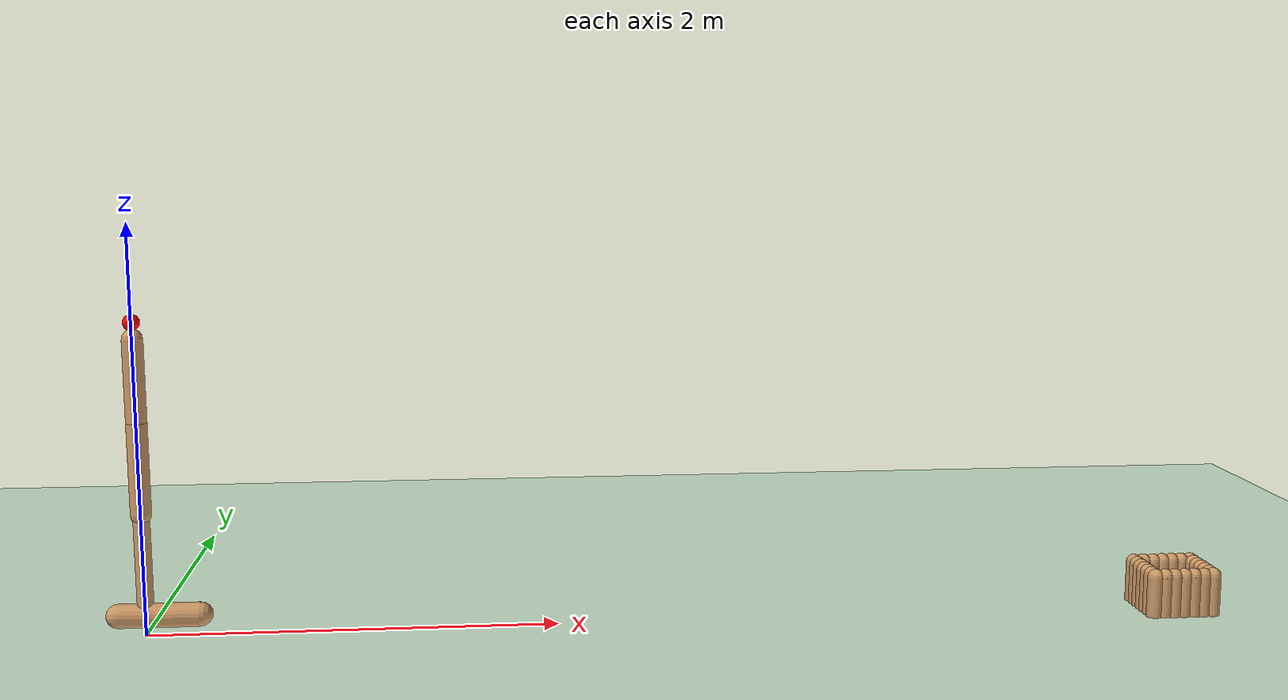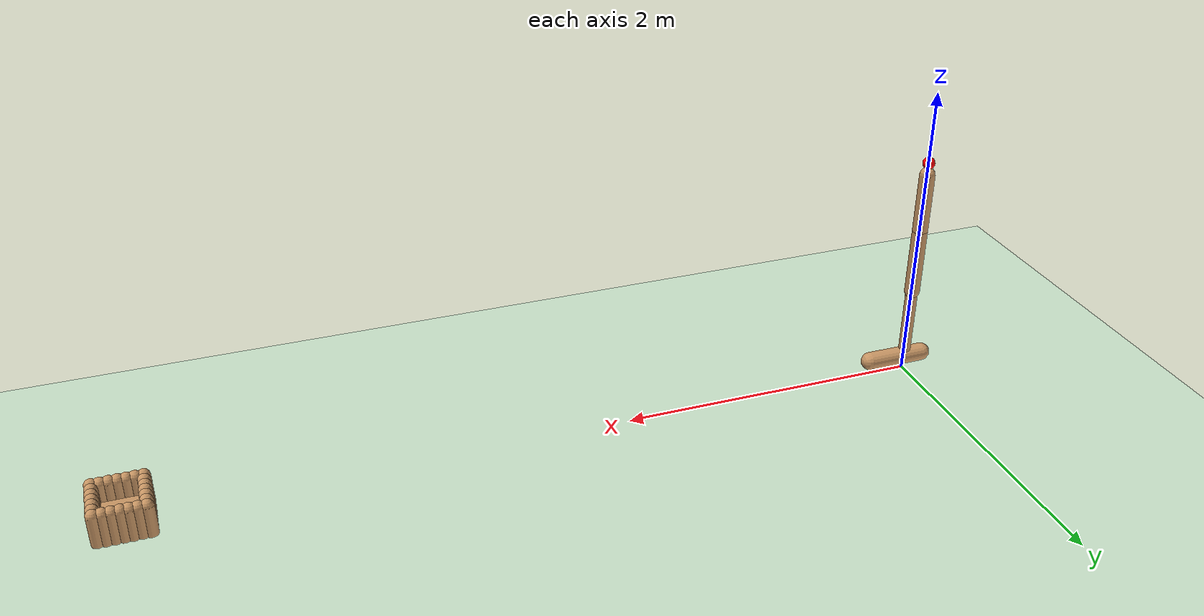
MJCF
<mujoco model="hopper">
  <compiler angle="radian" autolimits="true"/>
  <option integrator="RK4"/>
  <visual>
    <map znear="0.02"/>
  </visual>
  <default class="main">
    <joint limited="true" armature="1" damping="1"/>
    <geom condim="1" solimp="0.8 0.8 0.01 0.5 2" margin="0.001" material="geom" rgba="0.8 0.6 0.4 1"/>
    <general ctrllimited="true" ctrlrange="-0.4 0.4"/>
  </default>
  <asset>
    <texture type="skybox" builtin="gradient" rgb1="0.4 0.5 0.6" rgb2="0 0 0" width="100" height="600"/>
    <texture type="cube" name="texgeom" builtin="flat" mark="cross" rgb1="0.8 0.6 0.4" rgb2="0.8 0.6 0.4" markrgb="1 1 1" width="127" height="762"/>
    <texture type="2d" name="texplane" builtin="checker" rgb1="0 0 0" rgb2="0.8 0.8 0.8" width="100" height="100"/>
    <material name="MatPlane" texture="texplane" texrepeat="60 60" specular="1" shininess="1" reflectance="0.5"/>
    <material name="geom" texture="texgeom" texuniform="true"/>
  </asset>
  <worldbody>
    <geom name="floor" size="20 20 0.125" type="plane" condim="3" material="MatPlane" rgba="0.8 0.9 0.8 1"/>
    <light pos="0 0 1.3" dir="0 0 -1" directional="true" cutoff="100" exponent="1" diffuse="1 1 1" specular="0.1 0.1 0.1"/>
    <body name="torso" pos="0 0 1.25" gravcomp="0">
      <joint name="rootx" pos="0 0 -1.25" axis="1 0 0" limited="false" type="slide" armature="0" damping="0"/>
      <joint name="rootz" pos="0 0 -1.25" axis="0 0 1" limited="false" type="slide" ref="1.25" armature="0" damping="0"/>
      <joint name="rooty" pos="0 0 0" axis="0 1 0" limited="false" armature="0" damping="0"/>
      <geom name="torso_geom" size="0.05 0.2" type="capsule" friction="0.9 0.005 0.0001"/>
      <camera name="track" pos="0 -3 -0.25" quat="0.707107 0.707107 0 0" mode="trackcom"/>
      <body name="thigh" pos="0 0 -0.2" gravcomp="0">
        <joint name="thigh_joint" pos="0 0 0" axis="0 -1 0" range="-2.61799 0"/>
        <geom name="thigh_geom" size="0.05 0.225" pos="0 0 -0.225" type="capsule" friction="0.9 0.005 0.0001"/>
        <body name="leg" pos="0 0 -0.7" gravcomp="0">
          <joint name="leg_joint" pos="0 0 0.25" axis="0 -1 0" range="-2.61799 0"/>
          <geom name="leg_geom" size="0.04 0.25" type="capsule" friction="0.9 0.005 0.0001"/>
          <body name="foot" pos="0.065 0 -0.25" gravcomp="0">
            <joint name="foot_joint" pos="-0.065 0 0" axis="0 -1 0" range="-0.785398 0.785398"/>
            <geom name="foot_geom" size="0.06 0.195" quat="0.707107 0 -0.707107 0" type="capsule" friction="2 0.005 0.0001"/>
          </body>
        </body>
      </body>
    </body>
    <body name="ball" pos="0 0 1.53" gravcomp="0">
      <joint name="tar:x" pos="0 0 0" axis="1 0 0" limited="false" type="slide" armature="0" damping="0"/>
      <joint name="tar:y" pos="0 0 0" axis="0 1 0" limited="false" type="slide" armature="0" damping="0"/>
      <joint name="tar:z" pos="0 0 0" axis="0 0 1" limited="false" type="slide" armature="0" damping="0"/>
      <geom name="ball_geom" size="0.025" condim="4" priority="1" friction="0.1 0.1 0.1" solref="-10000 -10" solimp="0.9 0.95 0.001 0.5 2" mass="0.1" rgba="0.8 0.2 0.1 1"/>
      <site name="target_ball" pos="0 0 0" size="0.04" rgba="1 0 0 1"/>
    </body>
    <body name="basket_ground" pos="5 0 0" gravcomp="0">
      <geom name="basket_ground_geom" size="0.1 0.1 0.15" pos="0.15 0 0" quat="0.707107 0 -0.707107 0" type="box" friction="0.9 0.005 0.0001"/>
      <body name="edge1" pos="0 0 0" gravcomp="0">
        <geom name="edge1_geom" size="0.04 0.1" pos="0 0 0.1" quat="0 1 0 0" type="capsule" friction="2 0.005 0.0001"/>
      </body>
      <body name="edge2" pos="0 0 0.05" gravcomp="0">
        <geom name="edge2_geom" size="0.04 0.1" pos="0 0.05 0.05" quat="0 1 0 0" type="capsule" friction="2 0.005 0.0001"/>
      </body>
      <body name="edge3" pos="0 0 0.1" gravcomp="0">
        <geom name="edge3_geom" size="0.04 0.1" pos="0 0.1 0" quat="0 1 0 0" type="capsule" friction="2 0.005 0.0001"/>
      </body>
      <body name="edge4" pos="0 0 0.15" gravcomp="0">
        <geom name="edge4_geom" size="0.04 0.1" pos="0 0.15 -0.05" quat="0 1 0 0" type="capsule" friction="2 0.005 0.0001"/>
      </body>
      <body name="edge5" pos="0.05 0 0.15" gravcomp="0">
        <geom name="edge5_geom" size="0.04 0.1" pos="0 0.15 -0.05" quat="0 1 0 0" type="capsule" friction="2 0.005 0.0001"/>
      </body>
      <body name="edge6" pos="0.1 0 0.15" gravcomp="0">
        <geom name="edge6_geom" size="0.04 0.1" pos="0 0.15 -0.05" quat="0 1 0 0" type="capsule" friction="2 0.005 0.0001"/>
      </body>
      <body name="edge7" pos="0.15 0 0.15" gravcomp="0">
        <geom name="edge7_geom" size="0.04 0.1" pos="0 0.15 -0.05" quat="0 1 0 0" type="capsule" friction="2 0.005 0.0001"/>
      </body>
      <body name="edge8" pos="0.2 0 0.15" gravcomp="0">
        <geom name="edge8_geom" size="0.04 0.1" pos="0 0.15 -0.05" quat="0 1 0 0" type="capsule" friction="2 0.005 0.0001"/>
      </body>
      <body name="edge9" pos="0.25 0 0.15" gravcomp="0">
        <geom name="edge9_geom" size="0.04 0.1" pos="0 0.15 -0.05" quat="0 1 0 0" type="capsule" friction="2 0.005 0.0001"/>
      </body>
      <body name="edge10" pos="0.3 0 0.15" gravcomp="0">
        <geom name="edge10_geom" size="0.04 0.1" pos="0 0.15 -0.05" quat="0 1 0 0" type="capsule" friction="2 0.005 0.0001"/>
      </body>
      <body name="edge11" pos="0.3 0 0.1" gravcomp="0">
        <geom name="edge11_geom" size="0.04 0.1" pos="0 0.1 0" quat="0 1 0 0" type="capsule" friction="2 0.005 0.0001"/>
      </body>
      <body name="edge12" pos="0.3 0 0.05" gravcomp="0">
        <geom name="edge12_geom" size="0.04 0.1" pos="0 0.05 0.05" quat="0 1 0 0" type="capsule" friction="2 0.005 0.0001"/>
      </body>
      <body name="edge13" pos="0.3 0 0" gravcomp="0">
        <geom name="edge13_geom" size="0.04 0.1" pos="0 0 0.1" quat="0 1 0 0" type="capsule" friction="2 0.005 0.0001"/>
      </body>
      <body name="edge14" pos="0.3 0 -0.05" gravcomp="0">
        <geom name="edge14_geom" size="0.04 0.1" pos="0 -0.05 0.15" quat="0 1 0 0" type="capsule" friction="2 0.005 0.0001"/>
      </body>
      <body name="edge15" pos="0.3 0 -0.1" gravcomp="0">
        <geom name="edge15_geom" size="0.04 0.1" pos="0 -0.1 0.2" quat="0 1 0 0" type="capsule" friction="2 0.005 0.0001"/>
      </body>
      <body name="edge16" pos="0.3 0 -0.15" gravcomp="0">
        <geom name="edge16_geom" size="0.04 0.1" pos="0 -0.15 0.25" quat="0 1 0 0" type="capsule" friction="2 0.005 0.0001"/>
      </body>
      <body name="edge20" pos="0.25 0 -0.15" gravcomp="0">
        <geom name="edge20_geom" size="0.04 0.1" pos="0 -0.15 0.25" quat="0 1 0 0" type="capsule" friction="2 0.005 0.0001"/>
      </body>
      <body name="edge21" pos="0.2 0 -0.15" gravcomp="0">
        <geom name="edge21_geom" size="0.04 0.1" pos="0 -0.15 0.25" quat="0 1 0 0" type="capsule" friction="2 0.005 0.0001"/>
      </body>
      <body name="edge22" pos="0.15 0 -0.15" gravcomp="0">
        <geom name="edge22_geom" size="0.04 0.1" pos="0 -0.15 0.25" quat="0 1 0 0" type="capsule" friction="2 0.005 0.0001"/>
      </body>
      <body name="edge23" pos="0.1 0 -0.15" gravcomp="0">
        <geom name="edge23_geom" size="0.04 0.1" pos="0 -0.15 0.25" quat="0 1 0 0" type="capsule" friction="2 0.005 0.0001"/>
      </body>
      <body name="edge24" pos="0.05 0 -0.15" gravcomp="0">
        <geom name="edge24_geom" size="0.04 0.1" pos="0 -0.15 0.25" quat="0 1 0 0" type="capsule" friction="2 0.005 0.0001"/>
      </body>
      <body name="edge25" pos="0 0 -0.15" gravcomp="0">
        <geom name="edge25_geom" size="0.04 0.1" pos="0 -0.15 0.25" quat="0 1 0 0" type="capsule" friction="2 0.005 0.0001"/>
      </body>
      <body name="edge26" pos="0 0 -0.1" gravcomp="0">
        <geom name="edge26_geom" size="0.04 0.1" pos="0 -0.1 0.2" quat="0 1 0 0" type="capsule" friction="2 0.005 0.0001"/>
      </body>
      <body name="edge27" pos="0 0 -0.05" gravcomp="0">
        <geom name="edge27_geom" size="0.04 0.1" pos="0 -0.05 0.15" quat="0 1 0 0" type="capsule" friction="2 0.005 0.0001"/>
      </body>
    </body>
  </worldbody>
  <actuator>
    <general joint="thigh_joint" ctrlrange="-1 1" gear="200 0 0 0 0 0" actdim="0"/>
    <general joint="leg_joint" ctrlrange="-1 1" gear="200 0 0 0 0 0" actdim="0"/>
    <general joint="foot_joint" ctrlrange="-1 1" gear="200 0 0 0 0 0" actdim="0"/>
  </actuator>
</mujoco>
